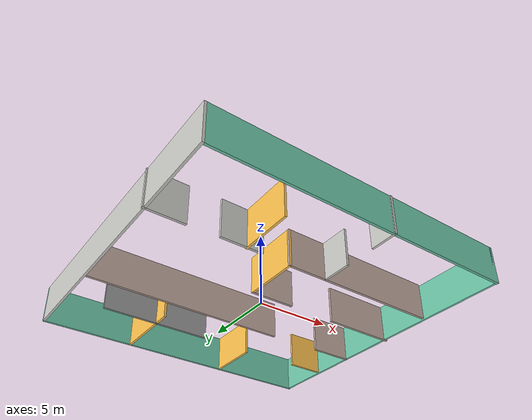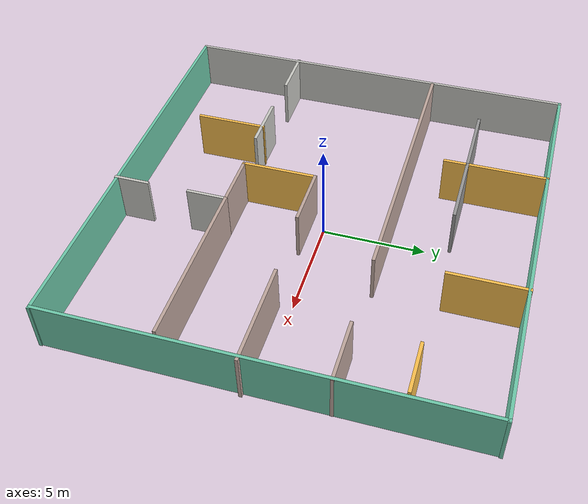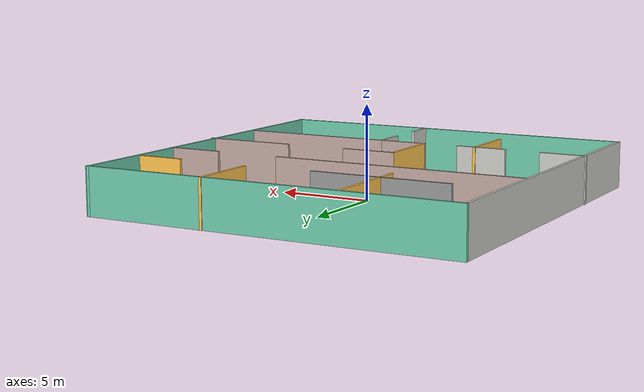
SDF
<?xml version='1.0'?>
<sdf version='1.7'>
  <model name='office'>
    <pose>-0.082843 0.071563 0 0 -0 0</pose>
    <link name='Wall_11'>
      <collision name='Wall_11_Collision'>
        <geometry>
          <box>
            <size>8.25 0.15 2.5</size>
          </box>
        </geometry>
        <pose>0 0 1.25 0 -0 0</pose>
      </collision>
      <visual name='Wall_11_Visual'>
        <pose>0 0 1.25 0 -0 0</pose>
        <geometry>
          <box>
            <size>8.25 0.15 2.5</size>
          </box>
        </geometry>
        <material>
          <script>
            <uri>file://media/materials/scripts/gazebo.material</uri>
            <name>Gazebo/Grey</name>
          </script>
          <ambient>0.760784 0.662745 0.627451 1</ambient>
        </material>
        <meta>
          <layer>0</layer>
        </meta>
      </visual>
      <pose>5.60986 -4.41068 0 0 -0 3.14159</pose>
    </link>
    <link name='Wall_12'>
      <collision name='Wall_12_Collision'>
        <geometry>
          <box>
            <size>2 0.15 2.5</size>
          </box>
        </geometry>
        <pose>0 0 1.25 0 -0 0</pose>
      </collision>
      <visual name='Wall_12_Visual'>
        <pose>0 0 1.25 0 -0 0</pose>
        <geometry>
          <box>
            <size>2 0.15 2.5</size>
          </box>
        </geometry>
        <material>
          <script>
            <uri>file://media/materials/scripts/gazebo.material</uri>
            <name>Gazebo/CeilingTiled</name>
          </script>
          <ambient>1 0.764706 0.305882 1</ambient>
        </material>
        <meta>
          <layer>0</layer>
        </meta>
      </visual>
      <pose>1.55986 -5.33568 0 0 -0 -1.5708</pose>
    </link>
    <link name='Wall_14'>
      <collision name='Wall_14_Collision'>
        <geometry>
          <box>
            <size>1.75 0.15 2.5</size>
          </box>
        </geometry>
        <pose>0 0 1.25 0 -0 0</pose>
      </collision>
      <visual name='Wall_14_Visual'>
        <pose>0 0 1.25 0 -0 0</pose>
        <geometry>
          <box>
            <size>1.75 0.15 2.5</size>
          </box>
        </geometry>
        <material>
          <script>
            <uri>file://media/materials/scripts/gazebo.material</uri>
            <name>Gazebo/CeilingTiled</name>
          </script>
          <ambient>1 0.764706 0.305882 1</ambient>
        </material>
        <meta>
          <layer>0</layer>
        </meta>
      </visual>
      <pose>1.5647 -9.16521 0 0 -0 -1.5708</pose>
    </link>
    <link name='Wall_16'>
      <collision name='Wall_16_Collision'>
        <geometry>
          <box>
            <size>2.75 0.15 2.5</size>
          </box>
        </geometry>
        <pose>0 0 1.25 0 -0 0</pose>
      </collision>
      <visual name='Wall_16_Visual'>
        <pose>0 0 1.25 0 -0 0</pose>
        <geometry>
          <box>
            <size>2.75 0.15 2.5</size>
          </box>
        </geometry>
        <material>
          <script>
            <uri>file://media/materials/scripts/gazebo.material</uri>
            <name>Gazebo/Grey</name>
          </script>
          <ambient>0.760784 0.662745 0.627451 1</ambient>
        </material>
        <meta>
          <layer>0</layer>
        </meta>
      </visual>
      <pose>0.259858 -4.41068 0 0 -0 3.14159</pose>
    </link>
    <link name='Wall_18'>
      <collision name='Wall_18_Collision'>
        <geometry>
          <box>
            <size>2.75 0.15 2.5</size>
          </box>
        </geometry>
        <pose>0 0 1.25 0 -0 0</pose>
      </collision>
      <visual name='Wall_18_Visual'>
        <pose>0 0 1.25 0 -0 0</pose>
        <geometry>
          <box>
            <size>2.75 0.15 2.5</size>
          </box>
        </geometry>
        <material>
          <script>
            <uri>file://media/materials/scripts/gazebo.material</uri>
            <name>Gazebo/CeilingTiled</name>
          </script>
          <ambient>0.760784 0.662745 0.627451 1</ambient>
        </material>
        <meta>
          <layer>0</layer>
        </meta>
      </visual>
      <pose>-4.34117 -4.50373 0 0 -0 3.14159</pose>
    </link>
    <link name='Wall_21'>
      <collision name='Wall_21_Collision'>
        <geometry>
          <box>
            <size>2.5 0.15 2.5</size>
          </box>
        </geometry>
        <pose>0 0 1.25 0 -0 0</pose>
      </collision>
      <visual name='Wall_21_Visual'>
        <pose>0 0 1.25 0 -0 0</pose>
        <geometry>
          <box>
            <size>2.5 0.15 2.5</size>
          </box>
        </geometry>
        <material>
          <script>
            <uri>file://media/materials/scripts/gazebo.material</uri>
            <name>Gazebo/CeilingTiled</name>
          </script>
          <ambient>0.760784 0.662745 0.627451 1</ambient>
        </material>
        <meta>
          <layer>0</layer>
        </meta>
      </visual>
      <pose>-8.91509 -4.41068 0 0 -0 3.14159</pose>
    </link>
    <link name='Wall_23'>
      <collision name='Wall_23_Collision'>
        <geometry>
          <box>
            <size>3.5 0.15 2.5</size>
          </box>
        </geometry>
        <pose>0 0 1.25 0 -0 0</pose>
      </collision>
      <visual name='Wall_23_Visual'>
        <pose>0 0 1.25 0 -0 0</pose>
        <geometry>
          <box>
            <size>3.5 0.15 2.5</size>
          </box>
        </geometry>
        <material>
          <script>
            <uri>file://media/materials/scripts/gazebo.material</uri>
            <name>Gazebo/Grey</name>
          </script>
          <ambient>1 0.764706 0.305882 1</ambient>
        </material>
        <meta>
          <layer>0</layer>
        </meta>
      </visual>
      <pose>-3.97165 -6.1322 0 0 -0 -1.5708</pose>
    </link>
    <link name='Wall_25'>
      <collision name='Wall_25_Collision'>
        <geometry>
          <box>
            <size>13.5 0.15 2.5</size>
          </box>
        </geometry>
        <pose>0 0 1.25 0 -0 0</pose>
      </collision>
      <visual name='Wall_25_Visual'>
        <pose>0 0 1.25 0 -0 0</pose>
        <geometry>
          <box>
            <size>13.5 0.15 2.5</size>
          </box>
        </geometry>
        <material>
          <script>
            <uri>file://media/materials/scripts/gazebo.material</uri>
            <name>Gazebo/Grey</name>
          </script>
          <ambient>0.760784 0.662745 0.627451 1</ambient>
        </material>
        <meta>
          <layer>0</layer>
        </meta>
      </visual>
      <pose>-3.25171 3.17272 0 0 -0 0</pose>
    </link>
    <link name='Wall_27'>
      <collision name='Wall_27_Collision'>
        <geometry>
          <box>
            <size>3 0.15 2.5</size>
          </box>
        </geometry>
        <pose>0 0 1.25 0 -0 0</pose>
      </collision>
      <visual name='Wall_27_Visual'>
        <pose>0 0 1.25 0 -0 0</pose>
        <geometry>
          <box>
            <size>3 0.15 2.5</size>
          </box>
        </geometry>
        <material>
          <script>
            <uri>file://media/materials/scripts/gazebo.material</uri>
            <name>Gazebo/Grey</name>
          </script>
          <ambient>0.760784 0.662745 0.627451 1</ambient>
        </material>
        <meta>
          <layer>0</layer>
        </meta>
      </visual>
      <pose>8.52604 3.1262 0 0 -0 0</pose>
    </link>
    <link name='Wall_30'>
      <collision name='Wall_30_Collision'>
        <geometry>
          <box>
            <size>4 0.15 2.5</size>
          </box>
        </geometry>
        <pose>0 0 1.25 0 -0 0</pose>
      </collision>
      <visual name='Wall_30_Visual'>
        <pose>0 0 1.25 0 -0 0</pose>
        <geometry>
          <box>
            <size>4 0.15 2.5</size>
          </box>
        </geometry>
        <material>
          <script>
            <uri>file://media/materials/scripts/gazebo.material</uri>
            <name>Gazebo/Grey</name>
          </script>
          <ambient>1 0.764706 0.305882 1</ambient>
        </material>
        <meta>
          <layer>0</layer>
        </meta>
      </visual>
      <pose>-3.92512 7.99369 0 0 -0 -1.5708</pose>
    </link>
    <link name='Wall_32'>
      <collision name='Wall_32_Collision'>
        <geometry>
          <box>
            <size>3.75 0.15 2.5</size>
          </box>
        </geometry>
        <pose>0 0 1.25 0 -0 0</pose>
      </collision>
      <visual name='Wall_32_Visual'>
        <pose>0 0 1.25 0 -0 0</pose>
        <geometry>
          <box>
            <size>3.75 0.15 2.5</size>
          </box>
        </geometry>
        <material>
          <script>
            <uri>file://media/materials/scripts/gazebo.material</uri>
            <name>Gazebo/Grey</name>
          </script>
          <ambient>1 0.764706 0.305882 1</ambient>
        </material>
        <meta>
          <layer>0</layer>
        </meta>
      </visual>
      <pose>3.33261 8.16521 0 0 -0 -1.5708</pose>
    </link>
    <link name='Wall_36'>
      <collision name='Wall_36_Collision'>
        <geometry>
          <box>
            <size>3.75 0.15 2.5</size>
          </box>
        </geometry>
        <pose>0 0 1.25 0 -0 0</pose>
      </collision>
      <visual name='Wall_36_Visual'>
        <pose>0 0 1.25 0 -0 0</pose>
        <geometry>
          <box>
            <size>3.75 0.15 2.5</size>
          </box>
        </geometry>
        <material>
          <script>
            <uri>file://media/materials/scripts/gazebo.material</uri>
            <name>Gazebo/Grey</name>
          </script>
          <ambient>1 0.764706 0.305882 1</ambient>
        </material>
        <meta>
          <layer>0</layer>
        </meta>
      </visual>
      <pose>-1.04014 -2.61068 0 0 -0 1.5708</pose>
    </link>
    <link name='Wall_37'>
      <collision name='Wall_37_Collision'>
        <geometry>
          <box>
            <size>3 0.15 2.5</size>
          </box>
        </geometry>
        <pose>0 0 1.25 0 -0 0</pose>
      </collision>
      <visual name='Wall_37_Visual'>
        <pose>0 0 1.25 0 -0 0</pose>
        <geometry>
          <box>
            <size>3 0.15 2.5</size>
          </box>
        </geometry>
        <material>
          <script>
            <uri>file://media/materials/scripts/gazebo.material</uri>
            <name>Gazebo/Grey</name>
          </script>
          <ambient>0.760784 0.662745 0.627451 1</ambient>
        </material>
        <meta>
          <layer>0</layer>
        </meta>
      </visual>
      <pose>0.384858 -0.810678 0 0 -0 0</pose>
    </link>
    <link name='Wall_39'>
      <collision name='Wall_39_Collision'>
        <geometry>
          <box>
            <size>5 0.15 2.5</size>
          </box>
        </geometry>
        <pose>0 0 1.25 0 -0 0</pose>
      </collision>
      <visual name='Wall_39_Visual'>
        <pose>0 0 1.25 0 -0 0</pose>
        <geometry>
          <box>
            <size>5 0.15 2.5</size>
          </box>
        </geometry>
        <material>
          <script>
            <uri>file://media/materials/scripts/gazebo.material</uri>
            <name>Gazebo/Grey</name>
          </script>
          <ambient>0.760784 0.662745 0.627451 1</ambient>
        </material>
        <meta>
          <layer>0</layer>
        </meta>
      </visual>
      <pose>7.66509 -0.735289 0 0 -0 0</pose>
    </link>
    <link name='Wall_41'>
      <collision name='Wall_41_Collision'>
        <geometry>
          <box>
            <size>3.75 0.15 2.5</size>
          </box>
        </geometry>
        <pose>0 0 1.25 0 -0 0</pose>
      </collision>
      <visual name='Wall_41_Visual'>
        <pose>0 0 1.25 0 -0 0</pose>
        <geometry>
          <box>
            <size>3.75 0.15 2.5</size>
          </box>
        </geometry>
        <material>
          <script>
            <uri>file://media/materials/scripts/gazebo.material</uri>
            <name>Gazebo/Grey</name>
          </script>
          <ambient>1 1 1 1</ambient>
        </material>
        <meta>
          <layer>0</layer>
        </meta>
      </visual>
      <pose>-5.72513 6.06869 0 0 -0 3.14159</pose>
    </link>
    <link name='Wall_43'>
      <collision name='Wall_43_Collision'>
        <geometry>
          <box>
            <size>1.25 0.15 2.5</size>
          </box>
        </geometry>
        <pose>0 0 1.25 0 -0 0</pose>
      </collision>
      <visual name='Wall_43_Visual'>
        <pose>0 0 1.25 0 -0 0</pose>
        <geometry>
          <box>
            <size>1.25 0.15 2.5</size>
          </box>
        </geometry>
        <material>
          <script>
            <uri>file://media/materials/scripts/gazebo.material</uri>
            <name>Gazebo/Grey</name>
          </script>
          <ambient>1 0.764706 0.305882 1</ambient>
        </material>
        <meta>
          <layer>0</layer>
        </meta>
      </visual>
      <pose>-3.92512 5.51869 0 0 -0 -1.5708</pose>
    </link>
    <link name='Wall_45'>
      <collision name='Wall_45_Collision'>
        <geometry>
          <box>
            <size>3.75 0.15 2.5</size>
          </box>
        </geometry>
        <pose>0 0 1.25 0 -0 0</pose>
      </collision>
      <visual name='Wall_45_Visual'>
        <pose>0 0 1.25 0 -0 0</pose>
        <geometry>
          <box>
            <size>3.75 0.15 2.5</size>
          </box>
        </geometry>
        <material>
          <script>
            <uri>file://media/materials/scripts/gazebo.material</uri>
            <name>Gazebo/Grey</name>
          </script>
          <ambient>1 1 1 1</ambient>
        </material>
        <meta>
          <layer>0</layer>
        </meta>
      </visual>
      <pose>-2.12513 6.06869 0 0 -0 0</pose>
    </link>
    <link name='Wall_47'>
      <collision name='Wall_47_Collision'>
        <geometry>
          <box>
            <size>2.5 0.15 2.5</size>
          </box>
        </geometry>
        <pose>0 0 1.25 0 -0 0</pose>
      </collision>
      <visual name='Wall_47_Visual'>
        <pose>0 0 1.25 0 -0 0</pose>
        <geometry>
          <box>
            <size>2.5 0.15 2.5</size>
          </box>
        </geometry>
        <material>
          <script>
            <uri>file://media/materials/scripts/gazebo.material</uri>
            <name>Gazebo/Grey</name>
          </script>
          <ambient>1 0.764706 0.305882 1</ambient>
        </material>
        <meta>
          <layer>0</layer>
        </meta>
      </visual>
      <pose>8.50866 6.10373 0 0 -0 0</pose>
    </link>
    <link name='Wall_5'>
      <collision name='Wall_5_Collision'>
        <geometry>
          <box>
            <size>20 0.15 2.5</size>
          </box>
        </geometry>
        <pose>0 0 1.25 0 -0 0</pose>
      </collision>
      <visual name='Wall_5_Visual'>
        <pose>0 0 1.25 0 -0 0</pose>
        <geometry>
          <box>
            <size>20 0.15 2.5</size>
          </box>
        </geometry>
        <material>
          <script>
            <uri>file://media/materials/scripts/gazebo.material</uri>
            <name>Gazebo/CeilingTiled</name>
          </script>
          <ambient>0.435294 0.796078 0.67451 1</ambient>
        </material>
        <meta>
          <layer>0</layer>
        </meta>
      </visual>
      <pose>-10.0241 0.012527 0 0 -0 -1.5708</pose>
    </link>
    <link name='Wall_7'>
      <collision name='Wall_7_Collision'>
        <geometry>
          <box>
            <size>20.1503 0.15 2.5</size>
          </box>
        </geometry>
        <pose>0 0 1.25 0 -0 0</pose>
      </collision>
      <visual name='Wall_7_Visual'>
        <pose>0 0 1.25 0 -0 0</pose>
        <geometry>
          <box>
            <size>20.1503 0.15 2.5</size>
          </box>
        </geometry>
        <material>
          <script>
            <uri>file://media/materials/scripts/gazebo.material</uri>
            <name>Gazebo/Grey</name>
          </script>
          <ambient>0.435294 0.796078 0.67451 1</ambient>
        </material>
        <meta>
          <layer>0</layer>
        </meta>
      </visual>
      <pose>-0.023971 -9.91247 0 0 -0 0</pose>
    </link>
    <link name='Wall_8'>
      <collision name='Wall_8_Collision'>
        <geometry>
          <box>
            <size>20 0.15 2.5</size>
          </box>
        </geometry>
        <pose>0 0 1.25 0 -0 0</pose>
      </collision>
      <visual name='Wall_8_Visual'>
        <pose>0 0 1.25 0 -0 0</pose>
        <geometry>
          <box>
            <size>20 0.15 2.5</size>
          </box>
        </geometry>
        <material>
          <script>
            <uri>file://media/materials/scripts/gazebo.material</uri>
            <name>Gazebo/Grey</name>
          </script>
          <ambient>0.435294 0.796078 0.67451 1</ambient>
        </material>
        <meta>
          <layer>0</layer>
        </meta>
      </visual>
      <pose>9.92965 0.012527 0 0 -0 1.5708</pose>
    </link>
    <link name='Wall_9'>
      <collision name='Wall_9_Collision'>
        <geometry>
          <box>
            <size>20.1503 0.15 2.5</size>
          </box>
        </geometry>
        <pose>0 0 1.25 0 -0 0</pose>
      </collision>
      <visual name='Wall_9_Visual'>
        <pose>0 0 1.25 0 -0 0</pose>
        <geometry>
          <box>
            <size>20.1503 0.15 2.5</size>
          </box>
        </geometry>
        <material>
          <script>
            <uri>file://media/materials/scripts/gazebo.material</uri>
            <name>Gazebo/Grey</name>
          </script>
          <ambient>0.435294 0.796078 0.67451 1</ambient>
        </material>
        <meta>
          <layer>0</layer>
        </meta>
      </visual>
      <pose>-0.023971 9.93753 0 0 -0 3.14159</pose>
    </link>
    <static>1</static>
  </model>
</sdf>
